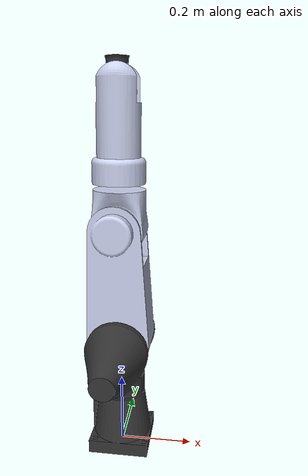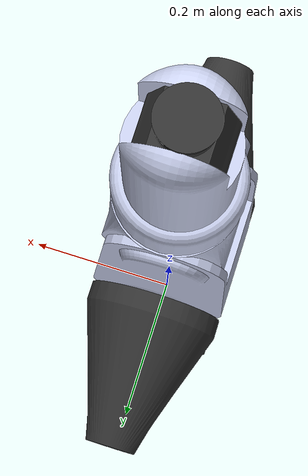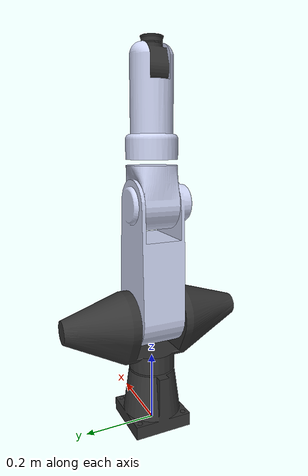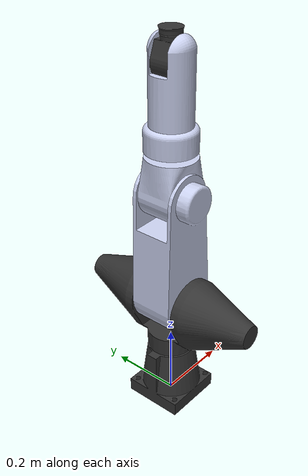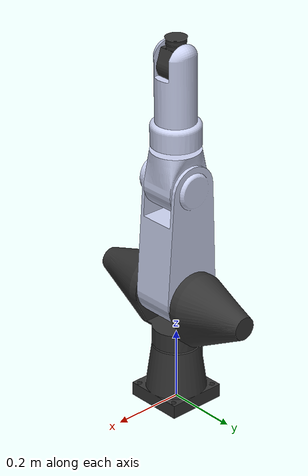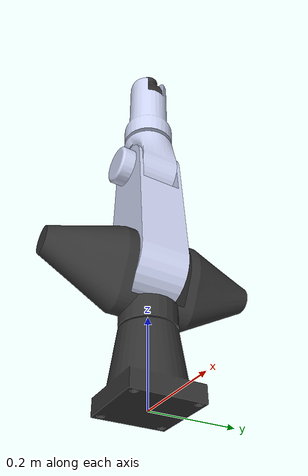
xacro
<?xml version="1.0"?>
<robot xmlns:xacro="http://www.ros.org/wiki/xacro" name="CRSA465">
    <xacro:arg name="initial_positions_file" default="initial_positions.yaml" />

    <!-- Import CRSA465 urdf file -->
    <xacro:include filename="$(find CRSA465)/urdf/CRSA465.urdf" />

    <!-- Import control_xacro -->
    <xacro:include filename="CRSA465.ros2_control.xacro" />

</robot>

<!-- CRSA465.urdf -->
<robot
  name="CRSA465">
  <link
    name="eslabon_base">
    <visual>
      <origin
        xyz="0 0 0"
        rpy="0 0 0" />
      <geometry>
        <mesh
          filename="package://CRSA465/meshes/eslabon_base.STL" />
      </geometry>
      <material
        name="">
        <color
          rgba="0.2 0.2 0.2 1" />
      </material>
    </visual>
    <collision>
      <origin
        xyz="0 0 0"
        rpy="0 0 0" />
      <geometry>
        <mesh
          filename="package://CRSA465/meshes/eslabon_base.STL" />
      </geometry>
    </collision>
  </link>

  <link
    name="eslabon_1">
    <inertial>
      <origin
        xyz="-3.6863E-08 5.1363E-08 0.12206"
        rpy="0 0 0" />
      <mass
        value="7.6604" />
      <inertia
        ixx="0.17917"
        ixy="-1.131E-07"
        ixz="-7.5108E-08"
        iyy="0.033062"
        iyz="-1.514E-08"
        izz="0.16191" />
    </inertial>
    <visual>
      <origin
        xyz="0 0 0"
        rpy="0 0 0" />
      <geometry>
        <mesh
          filename="package://CRSA465/meshes/eslabon_1.STL" />
      </geometry>
      <material
        name="">
        <color
          rgba="0.2 0.2 0.2 1" />
      </material>
    </visual>
    <collision>
      <origin
        xyz="0 0 0"
        rpy="0 0 0" />
      <geometry>
        <mesh
          filename="package://CRSA465/meshes/eslabon_1.STL" />
      </geometry>
    </collision>
  </link>
  <joint
    name="junta_0_1"
    type="revolute">
    <origin
      xyz="0 0 0.17"
      rpy="0 0 0" />
    <parent
      link="eslabon_base" />
    <child
      link="eslabon_1" />
    <axis
      xyz="0 0 1" />
    <limit
      lower="-3.0543"
      upper="3.0543"
      effort="39.5"
      velocity="3.14" />
    <calibration
      rising="3.0543" />
  </joint>

  <link
    name="eslabon_2">
    <inertial>
      <origin
        xyz="-2.7756E-17 0.0026097 0.092888"
        rpy="0 0 0" />
      <mass
        value="4.9089" />
      <inertia
        ixx="0.062922"
        ixy="-1.0564E-18"
        ixz="-3.0636E-18"
        iyy="0.065705"
        iyz="-0.0027173"
        izz="0.014194" />
    </inertial>
    <visual>
      <origin
        xyz="0 0 0"
        rpy="0 0 0" />
      <geometry>
        <mesh
          filename="package://CRSA465/meshes/eslabon_2.STL" />
      </geometry>
      <material
        name="">
        <color
          rgba="0.79216 0.81961 0.93333 1" />
      </material>
    </visual>
    <collision>
      <origin
        xyz="0 0 0"
        rpy="0 0 0" />
      <geometry>
        <mesh
          filename="package://CRSA465/meshes/eslabon_2.STL" />
      </geometry>
    </collision>
  </link>
  <joint
    name="junta_1_2"
    type="revolute">
    <origin
      xyz="0 8.00000000000384E-05 0.16"
      rpy="0 0 0" />
    <parent
      link="eslabon_1" />
    <child
      link="eslabon_2" />
    <axis
      xyz="0 1 0" />
    <limit
      lower="-1.5708"
      upper="1.5708"
      effort="66.08"
      velocity="3.14" />
    <calibration
      rising="0.17453" />
  </joint>

  <link
    name="eslabon_3">
    <inertial>
      <origin
        xyz="6.0536E-08 -2.6493E-08 0.0085436"
        rpy="0 0 0" />
      <mass
        value="0.84552" />
      <inertia
        ixx="0.0011491"
        ixy="1.4518E-07"
        ixz="-9.5319E-10"
        iyy="0.0013629"
        iyz="4.2164E-10"
        izz="0.0011924" />
    </inertial>
    <visual>
      <origin
        xyz="0 0 0"
        rpy="0 0 0" />
      <geometry>
        <mesh
          filename="package://CRSA465/meshes/eslabon_3.STL" />
      </geometry>
      <material
        name="">
        <color
          rgba="0.79216 0.81961 0.93333 1" />
      </material>
    </visual>
    <collision>
      <origin
        xyz="0 0 0"
        rpy="0 0 0" />
      <geometry>
        <mesh
          filename="package://CRSA465/meshes/eslabon_3.STL" />
      </geometry>
    </collision>
  </link>
  <joint
    name="junta_2_3"
    type="revolute">
    <origin
      xyz="0 -9.99999999999057E-05 0.305"
      rpy="0 0 0" />
    <parent
      link="eslabon_2" />
    <child
      link="eslabon_3" />
    <axis
      xyz="0 -1 0" />
    <limit
      lower="-1.9199"
      upper="1.9199"
      effort="39.5"
      velocity="3.14" />
    <calibration
      rising="-1.0472" />
  </joint>

  <link
    name="eslabon_4">
    <inertial>
      <origin
        xyz="2.7756E-17 2.7756E-17 0.093313"
        rpy="0 0 0" />
      <mass
        value="2.1712" />
      <inertia
        ixx="0.011152"
        ixy="4.346E-12"
        ixz="-2.1446E-19"
        iyy="0.010864"
        iyz="-3.4711E-18"
        izz="0.0040383" />
    </inertial>
    <visual>
      <origin
        xyz="0 0 0"
        rpy="0 0 0" />
      <geometry>
        <mesh
          filename="package://CRSA465/meshes/eslabon_4.STL" />
      </geometry>
      <material
        name="">
        <color
          rgba="0.79216 0.81961 0.93333 1" />
      </material>
    </visual>
    <collision>
      <origin
        xyz="0 0 0"
        rpy="0 0 0" />
      <geometry>
        <mesh
          filename="package://CRSA465/meshes/eslabon_4.STL" />
      </geometry>
    </collision>
  </link>
  <joint
    name="junta_3_4"
    type="revolute">
    <origin
      xyz="0 0 0.116"
      rpy="0 0 0" />
    <parent
      link="eslabon_3" />
    <child
      link="eslabon_4" />
    <axis
      xyz="0 0 1" />
    <limit
      lower="-3.1416"
      upper="3.1416"
      effort="6.89"
      velocity="2.99" />
    <calibration
      rising="3.14" />
  </joint>

  <link
    name="eslabon_5">
    <inertial>
      <origin
        xyz="1.3878E-17 0 0.0094718"
        rpy="0 0 0" />
      <mass
        value="0.37918" />
      <inertia
        ixx="0.00037262"
        ixy="-1.9242E-20"
        ixz="4.385E-20"
        iyy="0.00044766"
        iyz="-1.4316E-19"
        izz="0.00025382" />
    </inertial>
    <visual>
      <origin
        xyz="0 0 0"
        rpy="0 0 0" />
      <geometry>
        <mesh
          filename="package://CRSA465/meshes/eslabon_5.STL" />
      </geometry>
      <material
        name="">
        <color
          rgba="0.2 0.2 0.2 1" />
      </material>
    </visual>
    <collision>
      <origin
        xyz="0 0 0"
        rpy="0 0 0" />
      <geometry>
        <mesh
          filename="package://CRSA465/meshes/eslabon_5.STL" />
      </geometry>
    </collision>
  </link>
  <joint
    name="junta_4_5"
    type="revolute">
    <origin
      xyz="0 0 0.214"
      rpy="0 0 0" />
    <parent
      link="eslabon_4" />
    <child
      link="eslabon_5" />
    <axis
      xyz="0 -1 0" />
    <limit
      lower="-1.8326"
      upper="1.8326"
      effort="6.82"
      velocity="3.02" />
    <calibration
      rising="0.43633" />
  </joint>

  <link
    name="eslabon_6">
    <inertial>
      <origin
        xyz="0 0 0.007846"
        rpy="0 0 0" />
      <mass
        value="0.035974" />
      <inertia
        ixx="7.4902E-06"
        ixy="-6.0257E-37"
        ixz="-1.1379E-21"
        iyy="7.4902E-06"
        iyz="3.3128E-21"
        izz="1.356E-05" />
    </inertial>
    <visual>
      <origin
        xyz="0 0 0"
        rpy="0 0 0" />
      <geometry>
        <mesh
          filename="package://CRSA465/meshes/eslabon_6.STL" />
      </geometry>
      <material
        name="">
        <color
          rgba="0.2 0.2 0.2 1" />
      </material>
    </visual>
    <collision>
      <origin
        xyz="0 0 0"
        rpy="0 0 0" />
      <geometry>
        <mesh
          filename="package://CRSA465/meshes/eslabon_6.STL" />
      </geometry>
    </collision>
  </link>
  <joint
    name="junta_5_6"
    type="revolute">
    <origin
      xyz="0 0 0.0635000000000001"
      rpy="0 0 0" />
    <parent
      link="eslabon_5" />
    <child
      link="eslabon_6" />
    <axis
      xyz="0 0 1" />
    <limit
      lower="-3.1416"
      upper="3.1416"
      effort="2.5"
      velocity="2.99" />
    <calibration
      rising="3.14" />
  </joint>

  <!-- Efector final del CRS A465 -->
  <link name="ee_link"/>

  <joint name="junta_ee" type="fixed">
    <parent link="eslabon_6"/>
    <child link="ee_link"/>
    <origin xyz="0 0 0.05" rpy="0 0 0"/> <!-- ajusta el offset según la herramienta real -->
  </joint>

  <ros2_control name="CRSA465" type="system">
  <hardware>
  <plugin>crsa465_hw_interface/CRSA465Hardware</plugin>
    <param name="port">/dev/pts/5</param>
    <param name="baudrate">115200</param>
  </hardware>

  <joint name="junta_0_1">
    <command_interface name="position"/>
    <state_interface name="position"/>
  </joint>
  <joint name="junta_1_2">
    <command_interface name="position"/>
    <state_interface name="position"/>
  </joint>
  <joint name="junta_2_3">
    <command_interface name="position"/>
    <state_interface name="position"/>
  </joint>
  <joint name="junta_3_4">
    <command_interface name="position"/>
    <state_interface name="position"/>
  </joint>
  <joint name="junta_4_5">
    <command_interface name="position"/>
    <state_interface name="position"/>
  </joint>
  <joint name="junta_5_6">
    <command_interface name="position"/>
    <state_interface name="position"/>
  </joint>
</ros2_control>
</robot>
